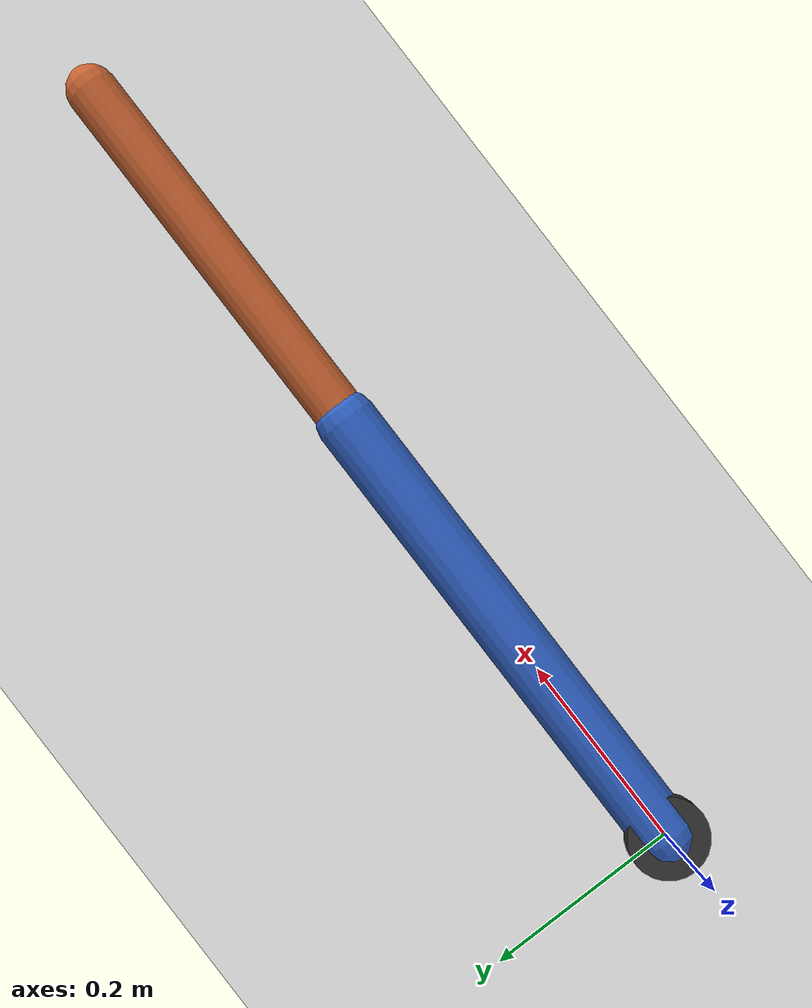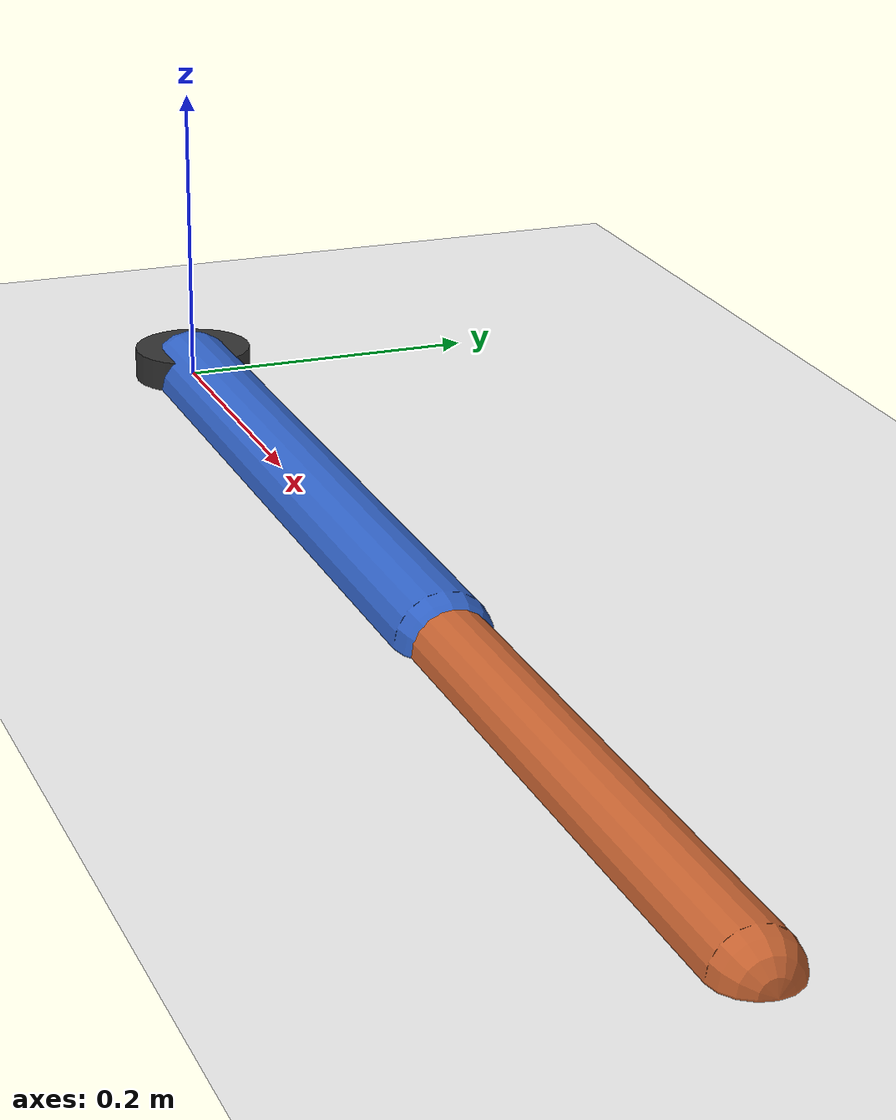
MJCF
<mujoco model="two_link_drawer">
  <option timestep="0.01" gravity="0 0 0"/>

  <visual>
    <headlight ambient="0.8 0.8 0.8"/>
  </visual>

  <worldbody>
    <!-- 바닥/배경 -->
    <geom name="floor" type="plane" size="3 3 0.1" rgba="0.95 0.95 0.95 1"/>

    <!-- 기준점 -->
    <body name="base" pos="0 0 0">
      <geom type="cylinder" size="0.04 0.02" rgba="0.2 0.2 0.2 1"/>

      <!-- 1번 링크 -->
      <body name="link1" pos="0 0 0">
        <joint name="joint1" type="hinge" axis="0 0 1" pos="0 0 0" range="-180 180"/>
        <geom type="capsule" fromto="0 0 0  0.5 0 0" size="0.03" rgba="0.2 0.4 0.8 1"/>

        <!-- 2번 링크 -->
        <body name="link2" pos="0.5 0 0">
          <joint name="joint2" type="hinge" axis="0 0 1" pos="0 0 0" range="-180 180"/>
          <geom type="capsule" fromto="0 0 0  0.4 0 0" size="0.025" rgba="0.8 0.4 0.2 1"/>

          <!-- end-effector -->
          <site name="ee" pos="0.4 0 0" size="0.02" rgba="1 0 0 1"/>
        </body>
      </body>
    </body>
  </worldbody>

  <actuator>
    <position name="act1" joint="joint1" kp="80"/>
    <position name="act2" joint="joint2" kp="80"/>
  </actuator>
</mujoco>
